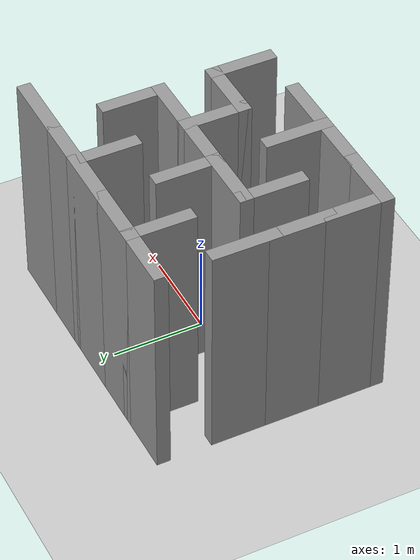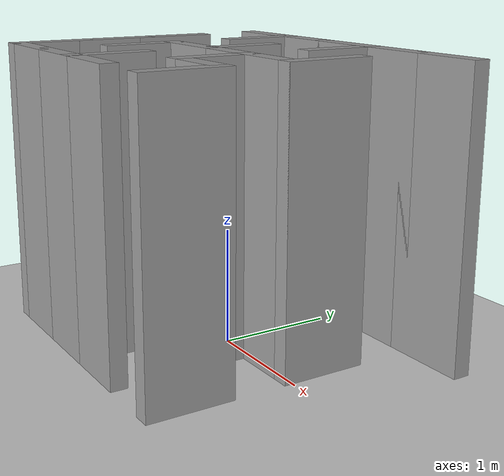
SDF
<?xml version="1.0"?>
<sdf version="1.6">
  <world name="mb3_maze_world">
    <!-- Basic environment -->
    <include>
      <uri>model://sun</uri>
    </include>
    <include>
      <uri>model://ground_plane</uri>
    </include>

    <!-- Physics (defaults are fine; tweak if you like) -->
    <physics name="default_physics" type="ode">
      <max_step_size>0.001</max_step_size>
      <real_time_update_rate>1000</real_time_update_rate>
      <real_time_factor>1.0</real_time_factor>
    </physics>

    <!-- CRITICAL: Add ROS 2 Plugins -->
    <plugin name="gazebo_ros_state" filename="libgazebo_ros_state.so">
      <ros>
        <namespace>/gazebo</namespace>
      </ros>
      <update_rate>10.0</update_rate>
    </plugin>

    <plugin name="gazebo_ros_factory" filename="libgazebo_ros_factory.so"/>

    <!-- Your maze model (inlined) -->
    <model name="mb3_maze">
      <!-- Put the whole maze at the origin; change this pose if you want to offset it -->
      <pose>0 0 0 0 0 0</pose>

      <link name="Wall_11">
        <collision name="Wall_11_Collision">
          <geometry><box><size>0.75 0.15 2.5</size></box></geometry>
          <pose>0 0 1.25 0 0 0</pose>
        </collision>
        <visual name="Wall_11_Visual">
          <pose>0 0 1.25 0 0 0</pose>
          <geometry><box><size>0.75 0.15 2.5</size></box></geometry>
          <material>
            <script>
              <uri>file://media/materials/scripts/gazebo.material</uri>
              <name>Gazebo/Grey</name>
            </script>
            <ambient>1 1 1 1</ambient>
          </material>
          <meta><layer>0</layer></meta>
        </visual>
      </link>

      <link name="Wall_13">
        <collision name="Wall_13_Collision">
          <geometry><box><size>0.75 0.15 2.5</size></box></geometry>
          <pose>0 0 1.25 0 0 0</pose>
        </collision>
        <visual name="Wall_13_Visual">
          <pose>0 0 1.25 0 0 0</pose>
          <geometry><box><size>0.75 0.15 2.5</size></box></geometry>
          <material>
            <script>
              <uri>file://media/materials/scripts/gazebo.material</uri>
              <name>Gazebo/Grey</name>
            </script>
            <ambient>1 1 1 1</ambient>
          </material>
          <meta><layer>0</layer></meta>
        </visual>
        <pose>0.3 -0.3 0 0 0 -1.5708</pose>
      </link>

      <link name="Wall_15">
        <collision name="Wall_15_Collision">
          <geometry><box><size>0.75 0.15 2.5</size></box></geometry>
          <pose>0 0 1.25 0 0 0</pose>
        </collision>
        <visual name="Wall_15_Visual">
          <pose>0 0 1.25 0 0 0</pose>
          <geometry><box><size>0.75 0.15 2.5</size></box></geometry>
          <material>
            <script>
              <uri>file://media/materials/scripts/gazebo.material</uri>
              <name>Gazebo/Grey</name>
            </script>
            <ambient>1 1 1 1</ambient>
          </material>
          <meta><layer>0</layer></meta>
        </visual>
        <pose>0.6 0 0 0 0 0</pose>
      </link>

      <link name="Wall_17">
        <collision name="Wall_17_Collision">
          <geometry><box><size>0.75 0.15 2.5</size></box></geometry>
          <pose>0 0 1.25 0 0 0</pose>
        </collision>
        <visual name="Wall_17_Visual">
          <pose>0 0 1.25 0 0 0</pose>
          <geometry><box><size>0.75 0.15 2.5</size></box></geometry>
          <material>
            <script>
              <uri>file://media/materials/scripts/gazebo.material</uri>
              <name>Gazebo/Grey</name>
            </script>
            <ambient>1 1 1 1</ambient>
          </material>
          <meta><layer>0</layer></meta>
        </visual>
        <pose>0.9 0.3 0 0 0 1.5708</pose>
      </link>

      <link name="Wall_19">
        <collision name="Wall_19_Collision">
          <geometry><box><size>0.75 0.15 2.5</size></box></geometry>
          <pose>0 0 1.25 0 0 0</pose>
        </collision>
        <visual name="Wall_19_Visual">
          <pose>0 0 1.25 0 0 0</pose>
          <geometry><box><size>0.75 0.15 2.5</size></box></geometry>
          <material>
            <script>
              <uri>file://media/materials/scripts/gazebo.material</uri>
              <name>Gazebo/Grey</name>
            </script>
            <ambient>1 1 1 1</ambient>
          </material>
          <meta><layer>0</layer></meta>
        </visual>
        <pose>0.6 -0.6 0 0 0 0</pose>
      </link>

      <link name="Wall_33">
        <collision name="Wall_33_Collision">
          <geometry><box><size>0.75 0.15 2.5</size></box></geometry>
          <pose>0 0 1.25 0 0 0</pose>
        </collision>
        <visual name="Wall_33_Visual">
          <pose>0 0 1.25 0 0 0</pose>
          <geometry><box><size>0.75 0.15 2.5</size></box></geometry>
          <material>
            <script>
              <uri>file://media/materials/scripts/gazebo.material</uri>
              <name>Gazebo/Grey</name>
            </script>
            <ambient>1 1 1 1</ambient>
          </material>
          <meta><layer>0</layer></meta>
        </visual>
        <pose>0.9 -0.9 0 0 0 -1.5708</pose>
      </link>

      <link name="Wall_37">
        <collision name="Wall_37_Collision">
          <geometry><box><size>0.75 0.15 2.5</size></box></geometry>
          <pose>0 0 1.25 0 0 0</pose>
        </collision>
        <visual name="Wall_37_Visual">
          <pose>0 0 1.25 0 0 0</pose>
          <geometry><box><size>0.75 0.15 2.5</size></box></geometry>
          <material>
            <script>
              <uri>file://media/materials/scripts/gazebo.material</uri>
              <name>Gazebo/Grey</name>
            </script>
            <ambient>1 1 1 1</ambient>
          </material>
          <meta><layer>0</layer></meta>
        </visual>
        <pose>0 -1.2 0 0 0 3.14159</pose>
      </link>

      <link name="Wall_39">
        <collision name="Wall_39_Collision">
          <geometry><box><size>0.75 0.15 2.5</size></box></geometry>
          <pose>0 0 1.25 0 0 0</pose>
        </collision>
        <visual name="Wall_39_Visual">
          <pose>0 0 1.25 0 0 0</pose>
          <geometry><box><size>0.75 0.15 2.5</size></box></geometry>
          <material>
            <script>
              <uri>file://media/materials/scripts/gazebo.material</uri>
              <name>Gazebo/Grey</name>
            </script>
            <ambient>1 1 1 1</ambient>
          </material>
          <meta><layer>0</layer></meta>
        </visual>
        <pose>-0.3 -0.9 0 0 0 1.5708</pose>
      </link>

      <link name="Wall_41">
        <collision name="Wall_41_Collision">
          <geometry><box><size>0.75 0.15 2.5</size></box></geometry>
          <pose>0 0 1.25 0 0 0</pose>
        </collision>
        <visual name="Wall_41_Visual">
          <pose>0 0 1.25 0 0 0</pose>
          <geometry><box><size>0.75 0.15 2.5</size></box></geometry>
          <material>
            <script>
              <uri>file://media/materials/scripts/gazebo.material</uri>
              <name>Gazebo/Grey</name>
            </script>
            <ambient>1 1 1 1</ambient>
          </material>
          <meta><layer>0</layer></meta>
        </visual>
        <pose>-0.6 -1.2 0 0 0 3.14159</pose>
      </link>

      <link name="Wall_43">
        <collision name="Wall_43_Collision">
          <geometry><box><size>0.75 0.15 2.5</size></box></geometry>
          <pose>0 0 1.25 0 0 0</pose>
        </collision>
        <visual name="Wall_43_Visual">
          <pose>0 0 1.25 0 0 0</pose>
          <geometry><box><size>0.75 0.15 2.5</size></box></geometry>
          <material>
            <script>
              <uri>file://media/materials/scripts/gazebo.material</uri>
              <name>Gazebo/Grey</name>
            </script>
            <ambient>1 1 1 1</ambient>
          </material>
          <meta><layer>0</layer></meta>
        </visual>
        <pose>-1.2 -1.2 0 0 0 3.14159</pose>
      </link>

      <link name="Wall_45">
        <collision name="Wall_45_Collision">
          <geometry><box><size>0.75 0.15 2.5</size></box></geometry>
          <pose>0 0 1.25 0 0 0</pose>
        </collision>
        <visual name="Wall_45_Visual">
          <pose>0 0 1.25 0 0 0</pose>
          <geometry><box><size>0.75 0.15 2.5</size></box></geometry>
          <material>
            <script>
              <uri>file://media/materials/scripts/gazebo.material</uri>
              <name>Gazebo/Grey</name>
            </script>
            <ambient>1 1 1 1</ambient>
          </material>
          <meta><layer>0</layer></meta>
        </visual>
        <pose>-1.5 -0.9 0 0 0 1.5708</pose>
      </link>

      <link name="Wall_47">
        <collision name="Wall_47_Collision">
          <geometry><box><size>0.75 0.15 2.5</size></box></geometry>
          <pose>0 0 1.25 0 0 0</pose>
        </collision>
        <visual name="Wall_47_Visual">
          <pose>0 0 1.25 0 0 0</pose>
          <geometry><box><size>0.75 0.15 2.5</size></box></geometry>
          <material>
            <script>
              <uri>file://media/materials/scripts/gazebo.material</uri>
              <name>Gazebo/Grey</name>
            </script>
            <ambient>1 1 1 1</ambient>
          </material>
          <meta><layer>0</layer></meta>
        </visual>
        <pose>-1.5 -0.3 0 0 0 1.5708</pose>
      </link>

      <link name="Wall_49">
        <collision name="Wall_49_Collision">
          <geometry><box><size>0.75 0.15 2.5</size></box></geometry>
          <pose>0 0 1.25 0 0 0</pose>
        </collision>
        <visual name="Wall_49_Visual">
          <pose>0 0 1.25 0 0 0</pose>
          <geometry><box><size>0.75 0.15 2.5</size></box></geometry>
          <material>
            <script>
              <uri>file://media/materials/scripts/gazebo.material</uri>
              <name>Gazebo/Grey</name>
            </script>
            <ambient>1 1 1 1</ambient>
          </material>
          <meta><layer>0</layer></meta>
        </visual>
        <pose>-1.5 0.3 0 0 0 1.5708</pose>
      </link>

      <link name="Wall_5">
        <collision name="Wall_5_Collision">
          <geometry><box><size>0.75 0.15 2.5</size></box></geometry>
          <pose>0 0 1.25 0 0 0</pose>
        </collision>
        <visual name="Wall_5_Visual">
          <pose>0 0 1.25 0 0 0</pose>
          <geometry><box><size>0.75 0.15 2.5</size></box></geometry>
          <material>
            <script>
              <uri>file://media/materials/scripts/gazebo.material</uri>
              <name>Gazebo/Grey</name>
            </script>
            <ambient>1 1 1 1</ambient>
          </material>
          <meta><layer>0</layer></meta>
        </visual>
        <pose>-0.6 0 0 0 0 3.14159</pose>
      </link>

      <link name="Wall_53">
        <collision name="Wall_53_Collision">
          <geometry><box><size>0.75 0.15 2.5</size></box></geometry>
          <pose>0 0 1.25 0 0 0</pose>
        </collision>
        <visual name="Wall_53_Visual">
          <pose>0 0 1.25 0 0 0</pose>
          <geometry><box><size>0.75 0.15 2.5</size></box></geometry>
          <material>
            <script>
              <uri>file://media/materials/scripts/gazebo.material</uri>
              <name>Gazebo/Grey</name>
            </script>
            <ambient>1 1 1 1</ambient>
          </material>
          <meta><layer>0</layer></meta>
        </visual>
        <pose>-1.2 1.2 0 0 0 0</pose>
      </link>

      <link name="Wall_55">
        <collision name="Wall_55_Collision">
          <geometry><box><size>0.75 0.15 2.5</size></box></geometry>
          <pose>0 0 1.25 0 0 0</pose>
        </collision>
        <visual name="Wall_55_Visual">
          <pose>0 0 1.25 0 0 0</pose>
          <geometry><box><size>0.75 0.15 2.5</size></box></geometry>
          <material>
            <script>
              <uri>file://media/materials/scripts/gazebo.material</uri>
              <name>Gazebo/Grey</name>
            </script>
            <ambient>1 1 1 1</ambient>
          </material>
          <meta><layer>0</layer></meta>
        </visual>
        <pose>-0.9 0.9 0 0 0 -1.5708</pose>
      </link>

      <link name="Wall_57">
        <collision name="Wall_57_Collision">
          <geometry><box><size>0.75 0.15 2.5</size></box></geometry>
          <pose>0 0 1.25 0 0 0</pose>
        </collision>
        <visual name="Wall_57_Visual">
          <pose>0 0 1.25 0 0 0</pose>
          <geometry><box><size>0.75 0.15 2.5</size></box></geometry>
          <material>
            <script>
              <uri>file://media/materials/scripts/gazebo.material</uri>
              <name>Gazebo/Grey</name>
            </script>
            <ambient>1 1 1 1</ambient>
          </material>
          <meta><layer>0</layer></meta>
        </visual>
        <pose>-0.6 1.2 0 0 0 0</pose>
      </link>

      <link name="Wall_59">
        <collision name="Wall_59_Collision">
          <geometry><box><size>0.75 0.15 2.5</size></box></geometry>
          <pose>0 0 1.25 0 0 0</pose>
        </collision>
        <visual name="Wall_59_Visual">
          <pose>0 0 1.25 0 0 0</pose>
          <geometry><box><size>0.75 0.15 2.5</size></box></geometry>
          <material>
            <script>
              <uri>file://media/materials/scripts/gazebo.material</uri>
              <name>Gazebo/Grey</name>
            </script>
            <ambient>1 1 1 1</ambient>
          </material>
          <meta><layer>0</layer></meta>
        </visual>
        <pose>0 1.2 0 0 0 0</pose>
      </link>

      <link name="Wall_61">
        <collision name="Wall_61_Collision">
          <geometry><box><size>0.75 0.15 2.5</size></box></geometry>
          <pose>0 0 1.25 0 0 0</pose>
        </collision>
        <visual name="Wall_61_Visual">
          <pose>0 0 1.25 0 0 0</pose>
          <geometry><box><size>0.75 0.15 2.5</size></box></geometry>
          <material>
            <script>
              <uri>file://media/materials/scripts/gazebo.material</uri>
              <name>Gazebo/Grey</name>
            </script>
            <ambient>1 1 1 1</ambient>
          </material>
          <meta><layer>0</layer></meta>
        </visual>
        <pose>0.3 0.9 0 0 0 -1.5708</pose>
      </link>

      <link name="Wall_63">
        <collision name="Wall_63_Collision">
          <geometry><box><size>0.75 0.15 2.5</size></box></geometry>
          <pose>0 0 1.25 0 0 0</pose>
        </collision>
        <visual name="Wall_63_Visual">
          <pose>0 0 1.25 0 0 0</pose>
          <geometry><box><size>0.75 0.15 2.5</size></box></geometry>
          <material>
            <script>
              <uri>file://media/materials/scripts/gazebo.material</uri>
              <name>Gazebo/Grey</name>
            </script>
            <ambient>1 1 1 1</ambient>
          </material>
          <meta><layer>0</layer></meta>
        </visual>
        <pose>0.6 1.2 0 0 0 0</pose>
      </link>

      <link name="Wall_65">
        <collision name="Wall_65_Collision">
          <geometry><box><size>0.75 0.15 2.5</size></box></geometry>
          <pose>0 0 1.25 0 0 0</pose>
        </collision>
        <visual name="Wall_65_Visual">
          <pose>0 0 1.25 0 0 0</pose>
          <geometry><box><size>0.75 0.15 2.5</size></box></geometry>
          <material>
            <script>
              <uri>file://media/materials/scripts/gazebo.material</uri>
              <name>Gazebo/Grey</name>
            </script>
            <ambient>1 1 1 1</ambient>
          </material>
          <meta><layer>0</layer></meta>
        </visual>
        <pose>1.2 1.2 0 0 0 0</pose>
      </link>

      <link name="Wall_7">
        <collision name="Wall_7_Collision">
          <geometry><box><size>0.75 0.15 2.5</size></box></geometry>
          <pose>0 0 1.25 0 0 0</pose>
        </collision>
        <visual name="Wall_7_Visual">
          <pose>0 0 1.25 0 0 0</pose>
          <geometry><box><size>0.75 0.15 2.5</size></box></geometry>
          <material>
            <script>
              <uri>file://media/materials/scripts/gazebo.material</uri>
              <name>Gazebo/Grey</name>
            </script>
            <ambient>1 1 1 1</ambient>
          </material>
          <meta><layer>0</layer></meta>
        </visual>
        <pose>-0.9 -0.3 0 0 0 -1.5708</pose>
      </link>

      <link name="Wall_9">
        <collision name="Wall_9_Collision">
          <geometry><box><size>0.75 0.15 2.5</size></box></geometry>
          <pose>0 0 1.25 0 0 0</pose>
        </collision>
        <visual name="Wall_9_Visual">
          <pose>0 0 1.25 0 0 0</pose>
          <geometry><box><size>0.75 0.15 2.5</size></box></geometry>
          <material>
            <script>
              <uri>file://media/materials/scripts/gazebo.material</uri>
              <name>Gazebo/Grey</name>
            </script>
            <ambient>1 1 1 1</ambient>
          </material>
          <meta><layer>0</layer></meta>
        </visual>
        <pose>-0.3 0.3 0 0 0 1.5708</pose>
      </link>

      <static>1</static>
    </model>

  </world>
</sdf>
